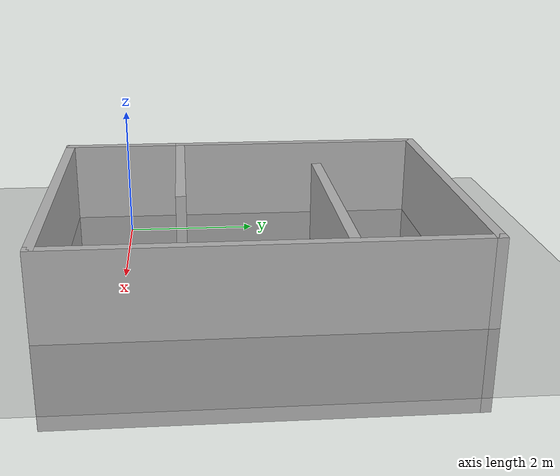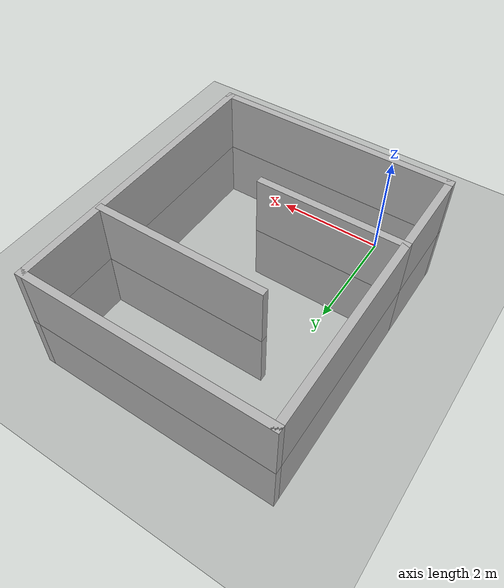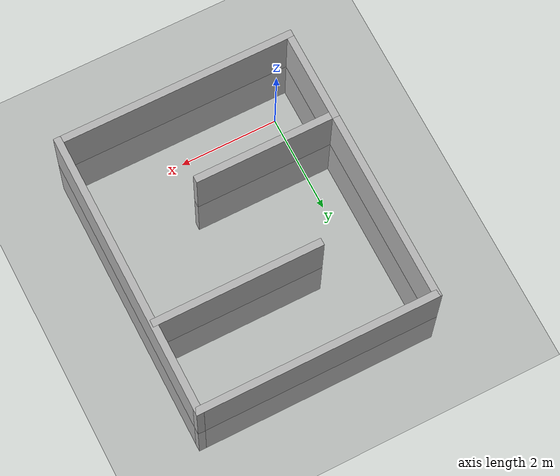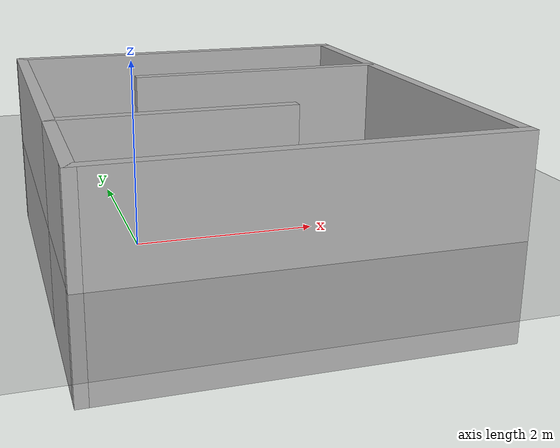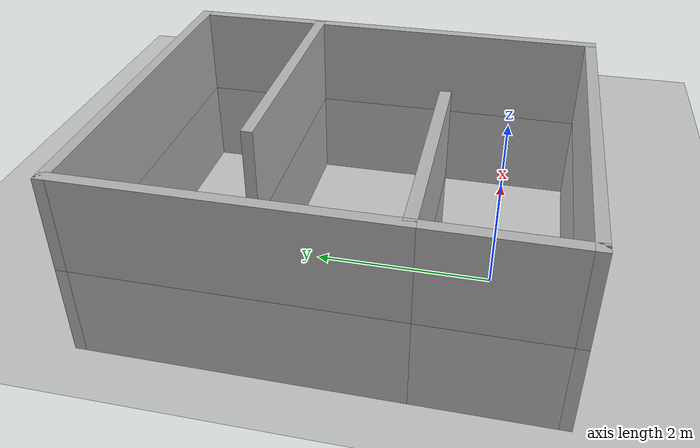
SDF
<?xml version="1.0" ?>
<sdf version="1.9">
  <world name="default">
    <plugin name='gz::sim::systems::Physics' filename='gz-sim-physics-system'/>
    <plugin name='gz::sim::systems::Sensors' filename='gz-sim-sensors-system'>
      <render_engine>ogre2</render_engine>
    </plugin>
    <plugin name='gz::sim::systems::SceneBroadcaster' filename='gz-sim-scene-broadcaster-system'/>
    <plugin name='gz::sim::systems::UserCommands' filename='gz-sim-user-commands-system'/>

    <!-- === ОСВЕЩЕНИЕ === -->
    <light name="sun" type="directional">
      <cast_shadows>true</cast_shadows>
      <pose>0 0 10 0 0 0</pose>
      <diffuse>0.8 0.8 0.8 1</diffuse>
      <specular>0.2 0.2 0.2 1</specular>
      <direction>-0.5 0.1 -0.9</direction>
      <attenuation>
        <range>1000</range>
        <constant>0.9</constant>
        <linear>0.01</linear>
        <quadratic>0.001</quadratic>
      </attenuation>
    </light>

    <!-- === ФИЗИКА === -->
    <physics type='ode'>
      <max_step_size>0.001</max_step_size>
      <real_time_factor>1</real_time_factor>
      <real_time_update_rate>1000</real_time_update_rate>
    </physics>

    <!-- === СЦЕНА === -->
    <scene>
      <ambient>0.4 0.4 0.4 1</ambient>
      <background>0.7 0.7 0.7 1</background>
      <shadows>true</shadows>
      <grid>true</grid>
    </scene>

    <!-- === ЗЕМЛЯ === -->
    <model name="ground_plane">
      <static>true</static>
      <link name="link">
        <collision name="collision">
          <geometry>
            <plane>
              <normal>0 0 1</normal>
              <size>100 100</size>
            </plane>
          </geometry>
          <surface>
            <friction>
              <ode>
                <mu>100</mu>
                <mu2>50</mu2>
              </ode>
            </friction>
          </surface>
        </collision>
        <visual name="visual">
          <cast_shadows>false</cast_shadows>
          <geometry>
            <plane>
              <normal>0 0 1</normal>
              <size>100 100</size>
            </plane>
          </geometry>
          <material>
            <ambient>0.5 0.5 0.5 1</ambient>
            <diffuse>0.5 0.5 0.5 1</diffuse>
          </material>
        </visual>
      </link>
    </model>

    <!-- === ЛАБИРИНТ === -->
    <model name="MyMaze">
      <static>true</static>
      <pose>1.62504 1.91256 0 0 0 0</pose>

      <!-- Wall 0: Нижняя стена -->
      <link name="Wall_0">
        <pose>0 -2.925 0 0 0 3.14159</pose>
        <visual name="Wall_0_Visual">
          <geometry>
            <box><size>5 0.15 2.5</size></box>
          </geometry>
          <material>
            <ambient>0.7 0.7 0.7 1</ambient>
            <diffuse>0.7 0.7 0.7 1</diffuse>
          </material>
        </visual>
        <collision name="Wall_0_Collision">
          <geometry>
            <box><size>5 0.15 2.5</size></box>
          </geometry>
          <surface>
            <friction>
              <ode>
                <mu>100</mu>
                <mu2>50</mu2>
              </ode>
            </friction>
          </surface>
        </collision>
      </link>

      <!-- Wall 11: Верхняя стена -->
      <link name="Wall_11">
        <pose>0.70541 1.08299 0 0 0 3.14159</pose>
        <visual name="Wall_11_Visual">
          <geometry>
            <box><size>3.5 0.15 2.5</size></box>
          </geometry>
          <material>
            <ambient>0.7 0.7 0.7 1</ambient>
            <diffuse>0.7 0.7 0.7 1</diffuse>
          </material>
        </visual>
        <collision name="Wall_11_Collision">
          <geometry>
            <box><size>3.5 0.15 2.5</size></box>
          </geometry>
          <surface>
            <friction>
              <ode>
                <mu>100</mu>
                <mu2>50</mu2>
              </ode>
            </friction>
          </surface>
        </collision>
      </link>

      <!-- Wall 3: Левая нижняя стена -->
      <link name="Wall_3">
        <pose>-2.425 -2 0 0 0 1.5708</pose>
        <visual name="Wall_3_Visual">
          <geometry>
            <box><size>2 0.15 2.5</size></box>
          </geometry>
          <material>
            <ambient>0.7 0.7 0.7 1</ambient>
            <diffuse>0.7 0.7 0.7 1</diffuse>
          </material>
        </visual>
        <collision name="Wall_3_Collision">
          <geometry>
            <box><size>2 0.15 2.5</size></box>
          </geometry>
          <surface>
            <friction>
              <ode>
                <mu>100</mu>
                <mu2>50</mu2>
              </ode>
            </friction>
          </surface>
        </collision>
      </link>

      <!-- Wall 4: Горизонтальная внутренняя стена -->
      <link name="Wall_4">
        <pose>-1 -1.075 0 0 0 0</pose>
        <visual name="Wall_4_Visual">
          <geometry>
            <box><size>3 0.15 2.5</size></box>
          </geometry>
          <material>
            <ambient>0.7 0.7 0.7 1</ambient>
            <diffuse>0.7 0.7 0.7 1</diffuse>
          </material>
        </visual>
        <collision name="Wall_4_Collision">
          <geometry>
            <box><size>3 0.15 2.5</size></box>
          </geometry>
          <surface>
            <friction>
              <ode>
                <mu>100</mu>
                <mu2>50</mu2>
              </ode>
            </friction>
          </surface>
        </collision>
      </link>

      <!-- Wall 7: Правая стена -->
      <link name="Wall_7">
        <pose>2.425 0 0 0 0 1.5708</pose>
        <visual name="Wall_7_Visual">
          <geometry>
            <box><size>6 0.15 2.5</size></box>
          </geometry>
          <material>
            <ambient>0.7 0.7 0.7 1</ambient>
            <diffuse>0.7 0.7 0.7 1</diffuse>
          </material>
        </visual>
        <collision name="Wall_7_Collision">
          <geometry>
            <box><size>6 0.15 2.5</size></box>
          </geometry>
          <surface>
            <friction>
              <ode>
                <mu>100</mu>
                <mu2>50</mu2>
              </ode>
            </friction>
          </surface>
        </collision>
      </link>

      <!-- Wall 8: Верхняя стена -->
      <link name="Wall_8">
        <pose>0 2.925 0 0 0 3.14159</pose>
        <visual name="Wall_8_Visual">
          <geometry>
            <box><size>5 0.15 2.5</size></box>
          </geometry>
          <material>
            <ambient>0.7 0.7 0.7 1</ambient>
            <diffuse>0.7 0.7 0.7 1</diffuse>
          </material>
        </visual>
        <collision name="Wall_8_Collision">
          <geometry>
            <box><size>5 0.15 2.5</size></box>
          </geometry>
          <surface>
            <friction>
              <ode>
                <mu>100</mu>
                <mu2>50</mu2>
              </ode>
            </friction>
          </surface>
        </collision>
      </link>

      <!-- Wall 9: Левая верхняя стена -->
      <link name="Wall_9">
        <pose>-2.425 0.925 0 0 0 -1.5708</pose>
        <visual name="Wall_9_Visual">
          <geometry>
            <box><size>4.15 0.15 2.5</size></box>
          </geometry>
          <material>
            <ambient>0.7 0.7 0.7 1</ambient>
            <diffuse>0.7 0.7 0.7 1</diffuse>
          </material>
        </visual>
        <collision name="Wall_9_Collision">
          <geometry>
            <box><size>4.15 0.15 2.5</size></box>
          </geometry>
          <surface>
            <friction>
              <ode>
                <mu>100</mu>
                <mu2>50</mu2>
              </ode>
            </friction>
          </surface>
        </collision>
      </link>

    </model>

    <!-- === GUI НАСТРОЙКИ === -->
    <gui>
      <camera name="user_camera">
        <pose>0 0 20 0 1.57 0</pose>
        <view_controller>orbit</view_controller>
        <projection_type>perspective</projection_type>
      </camera>
    </gui>

  </world>
</sdf>
